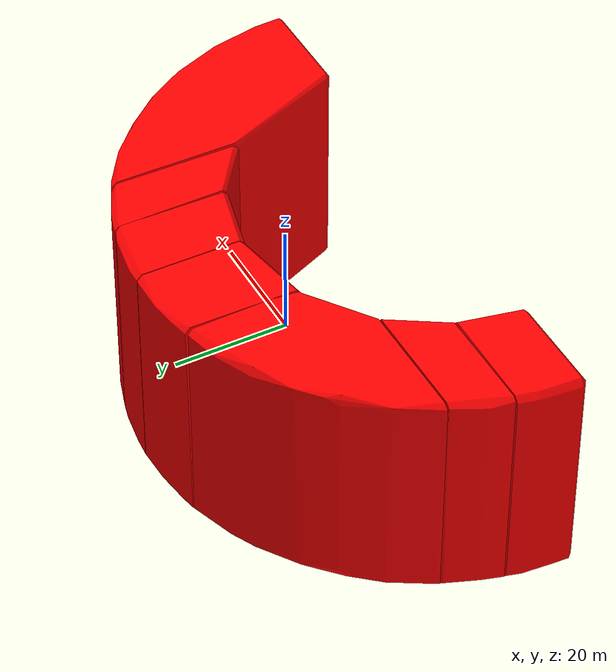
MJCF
<mujoco>
    <asset>
        <mesh file="rainbow_stacker/part1/0_rainbow_part1_20200427_20200428.stl" name="rainbow0"></mesh>
        <mesh file="rainbow_stacker/part1/1_rainbow_part1_20200427_20200428.stl" name="rainbow1"></mesh>
        <mesh file="rainbow_stacker/part1/2_rainbow_part1_20200427_20200428.stl" name="rainbow2"></mesh>
        <mesh file="rainbow_stacker/part1/3_rainbow_part1_20200427_20200428.stl" name="rainbow3"></mesh>
        <mesh file="rainbow_stacker/part1/4_rainbow_part1_20200427_20200428.stl" name="rainbow4"></mesh>
        <mesh file="rainbow_stacker/part1/5_rainbow_part1_20200427_20200428.stl" name="rainbow5"></mesh>
        <mesh file="rainbow_stacker/part1/6_rainbow_part1_20200427_20200428.stl" name="rainbow6"></mesh>
        <material name="block_mat" specular="0" shininess="0.5" reflectance="0" rgba="1 0 0 1"/>
    </asset>
    <worldbody>
        <body quat="0.7071 0 -0.7071 0">
            <geom type="mesh" mesh="rainbow0" material="block_mat"/>
            <geom type="mesh" mesh="rainbow1" material="block_mat"/>
            <geom type="mesh" mesh="rainbow2" material="block_mat"/>
            <geom type="mesh" mesh="rainbow3" material="block_mat"/>
            <geom type="mesh" mesh="rainbow4" material="block_mat"/>
            <geom type="mesh" mesh="rainbow5" material="block_mat"/>
            <geom type="mesh" mesh="rainbow6" material="block_mat"/>
            <joint type="free"/>
        </body>
    </worldbody>
</mujoco>
